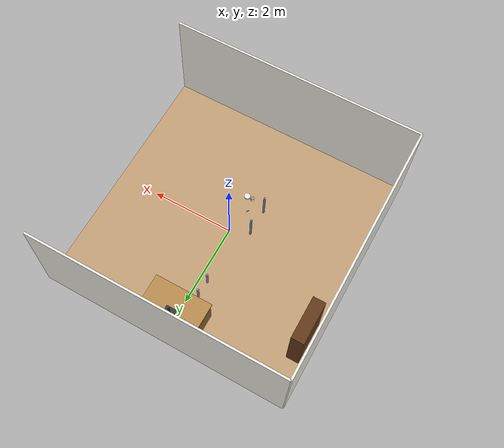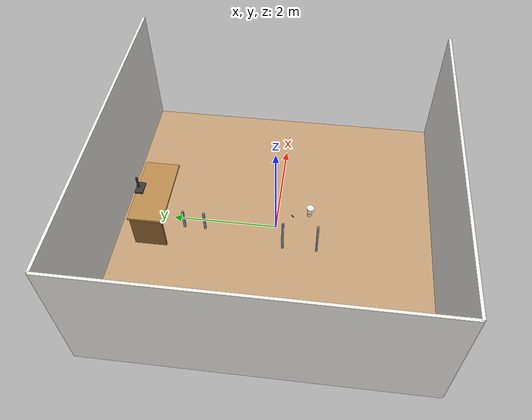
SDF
<sdf version="1.10">
 <world name="bps_room">
  <model name="floor">
   <static>true</static>
   <link name="link">
    <collision name="collision"><geometry><box><size>6 6 0.02</size></box></geometry></collision>
    <visual name="visual">
     <geometry><box><size>6 6 0.02</size></box></geometry>
     <material>
      <ambient>0.75999999 0.620000005 0.460000008 1</ambient>
      <diffuse>0.75999999 0.620000005 0.460000008 1</diffuse>
     </material>
    </visual>
    <inertial>
     <mass>1</mass>
     <inertia><ixx>1</ixx><ixy>0</ixy><ixz>0</ixz><iyy>1</iyy><iyz>0</iyz><izz>1</izz></inertia>
    </inertial>
   </link>
  </model>
  <model name="wall_north">
   <static>true</static>
   <pose>0 3 1.25 0 0 0</pose>
   <link name="link">
    <collision name="collision">
     <geometry><box><size>6 0.050000000000000003 2.5</size></box></geometry>
    </collision>
    <visual name="visual">
     <geometry><box><size>6 0.050000000000000003 2.5</size></box></geometry>
     <material>
      <ambient>0.949999988 0.939999998 0.910000026 1</ambient>
      <diffuse>0.949999988 0.939999998 0.910000026 1</diffuse>
     </material>
    </visual>
    <inertial>
     <mass>1</mass>
     <inertia><ixx>1</ixx><ixy>0</ixy><ixz>0</ixz><iyy>1</iyy><iyz>0</iyz><izz>1</izz></inertia>
    </inertial>
   </link>
  </model>
  <model name="wall_south">
   <static>true</static>
   <pose>0 -3 1.25 0 0 0</pose>
   <link name="link">
    <collision name="collision">
     <geometry><box><size>6 0.050000000000000003 2.5</size></box></geometry>
    </collision>
    <visual name="visual">
     <geometry><box><size>6 0.050000000000000003 2.5</size></box></geometry>
     <material>
      <ambient>0.949999988 0.939999998 0.910000026 1</ambient>
      <diffuse>0.949999988 0.939999998 0.910000026 1</diffuse>
     </material>
    </visual>
    <inertial>
     <mass>1</mass>
     <inertia><ixx>1</ixx><ixy>0</ixy><ixz>0</ixz><iyy>1</iyy><iyz>0</iyz><izz>1</izz></inertia>
    </inertial>
   </link>
  </model>
  <model name="wall_west">
   <static>true</static>
   <pose>-3 0 1.25 0 0 0</pose>
   <link name="link">
    <collision name="collision">
     <geometry><box><size>0.050000000000000003 6 2.5</size></box></geometry>
    </collision>
    <visual name="visual">
     <geometry><box><size>0.050000000000000003 6 2.5</size></box></geometry>
     <material>
      <ambient>0.930000007 0.920000017 0.889999986 1</ambient>
      <diffuse>0.930000007 0.920000017 0.889999986 1</diffuse>
     </material>
    </visual>
    <inertial>
     <mass>1</mass>
     <inertia><ixx>1</ixx><ixy>0</ixy><ixz>0</ixz><iyy>1</iyy><iyz>0</iyz><izz>1</izz></inertia>
    </inertial>
   </link>
  </model>
  <model name="bookshelf_body">
   <static>true</static>
   <pose>-2.7000000000000002 1.5 0.75 0 0 0</pose>
   <link name="link">
    <collision name="collision"><geometry><box><size>0.29999999999999999 1 1.5</size></box></geometry></collision>
    <visual name="visual">
     <geometry><box><size>0.29999999999999999 1 1.5</size></box></geometry>
     <material>
      <ambient>0.379999995 0.219999999 0.0900000036 1</ambient>
      <diffuse>0.379999995 0.219999999 0.0900000036 1</diffuse>
     </material>
    </visual>
    <inertial>
     <mass>1</mass>
     <inertia><ixx>1</ixx><ixy>0</ixy><ixz>0</ixz><iyy>1</iyy><iyz>0</iyz><izz>1</izz></inertia>
    </inertial>
   </link>
  </model>
  <model name="shelf_1">
   <static>true</static>
   <pose>-2.7000000000000002 1.5 0.40000000000000002 0 0 0</pose>
   <link name="link">
    <collision name="collision">
     <geometry><box><size>0.28000000000000003 0.94999999999999996 0.02</size></box></geometry>
    </collision>
    <visual name="visual">
     <geometry><box><size>0.28000000000000003 0.94999999999999996 0.02</size></box></geometry>
     <material>
      <ambient>0.5 0.319999993 0.140000001 1</ambient>
      <diffuse>0.5 0.319999993 0.140000001 1</diffuse>
     </material>
    </visual>
    <inertial>
     <mass>1</mass>
     <inertia><ixx>1</ixx><ixy>0</ixy><ixz>0</ixz><iyy>1</iyy><iyz>0</iyz><izz>1</izz></inertia>
    </inertial>
   </link>
  </model>
  <model name="shelf_2">
   <static>true</static>
   <pose>-2.7000000000000002 1.5 0.84999999999999998 0 0 0</pose>
   <link name="link">
    <collision name="collision">
     <geometry><box><size>0.28000000000000003 0.94999999999999996 0.02</size></box></geometry>
    </collision>
    <visual name="visual">
     <geometry><box><size>0.28000000000000003 0.94999999999999996 0.02</size></box></geometry>
     <material>
      <ambient>0.5 0.319999993 0.140000001 1</ambient>
      <diffuse>0.5 0.319999993 0.140000001 1</diffuse>
     </material>
    </visual>
    <inertial>
     <mass>1</mass>
     <inertia><ixx>1</ixx><ixy>0</ixy><ixz>0</ixz><iyy>1</iyy><iyz>0</iyz><izz>1</izz></inertia>
    </inertial>
   </link>
  </model>
  <model name="shelf_3">
   <static>true</static>
   <pose>-2.7000000000000002 1.5 1.25 0 0 0</pose>
   <link name="link">
    <collision name="collision">
     <geometry><box><size>0.28000000000000003 0.94999999999999996 0.02</size></box></geometry>
    </collision>
    <visual name="visual">
     <geometry><box><size>0.28000000000000003 0.94999999999999996 0.02</size></box></geometry>
     <material>
      <ambient>0.5 0.319999993 0.140000001 1</ambient>
      <diffuse>0.5 0.319999993 0.140000001 1</diffuse>
     </material>
    </visual>
    <inertial>
     <mass>1</mass>
     <inertia><ixx>1</ixx><ixy>0</ixy><ixz>0</ixz><iyy>1</iyy><iyz>0</iyz><izz>1</izz></inertia>
    </inertial>
   </link>
  </model>
  <model name="books_row1">
   <static>true</static>
   <pose>-2.6200000000000001 1.5 0.62 0 0 0</pose>
   <link name="link">
    <visual name="visual">
     <geometry><box><size>0.040000000000000001 0.80000000000000004 0.20000000000000001</size></box></geometry>
     <material>
      <ambient>0.779999971 0.180000007 0.180000007 1</ambient>
      <diffuse>0.779999971 0.180000007 0.180000007 1</diffuse>
     </material>
    </visual>
    <inertial>
     <mass>1</mass>
     <inertia><ixx>1</ixx><ixy>0</ixy><ixz>0</ixz><iyy>1</iyy><iyz>0</iyz><izz>1</izz></inertia>
    </inertial>
   </link>
  </model>
  <model name="books_row2">
   <static>true</static>
   <pose>-2.6200000000000001 1.5 1.0600000000000001 0 0 0</pose>
   <link name="link">
    <visual name="visual">
     <geometry><box><size>0.040000000000000001 0.69999999999999996 0.17999999999999999</size></box></geometry>
     <material>
      <ambient>0.180000007 0.319999993 0.720000029 1</ambient>
      <diffuse>0.180000007 0.319999993 0.720000029 1</diffuse>
     </material>
    </visual>
    <inertial>
     <mass>1</mass>
     <inertia><ixx>1</ixx><ixy>0</ixy><ixz>0</ixz><iyy>1</iyy><iyz>0</iyz><izz>1</izz></inertia>
    </inertial>
   </link>
  </model>
  <model name="desk">
   <static>true</static>
   <pose>0 2.2999999999999998 0.75 0 0 0</pose>
   <link name="link">
    <collision name="collision">
     <geometry><box><size>1.3999999999999999 0.65000000000000002 0.050000000000000003</size></box></geometry>
    </collision>
    <visual name="visual">
     <geometry><box><size>1.3999999999999999 0.65000000000000002 0.050000000000000003</size></box></geometry>
     <material>
      <ambient>0.720000029 0.540000021 0.300000012 1</ambient>
      <diffuse>0.720000029 0.540000021 0.300000012 1</diffuse>
     </material>
    </visual>
    <inertial>
     <mass>1</mass>
     <inertia><ixx>1</ixx><ixy>0</ixy><ixz>0</ixz><iyy>1</iyy><iyz>0</iyz><izz>1</izz></inertia>
    </inertial>
   </link>
  </model>
  <model name="desk_leg_left">
   <static>true</static>
   <pose>-0.65000000000000002 2.2999999999999998 0.375 0 0 0</pose>
   <link name="link">
    <collision name="collision">
     <geometry><box><size>0.050000000000000003 0.59999999999999998 0.75</size></box></geometry>
    </collision>
    <visual name="visual">
     <geometry><box><size>0.050000000000000003 0.59999999999999998 0.75</size></box></geometry>
     <material>
      <ambient>0.550000012 0.379999995 0.180000007 1</ambient>
      <diffuse>0.550000012 0.379999995 0.180000007 1</diffuse>
     </material>
    </visual>
    <inertial>
     <mass>1</mass>
     <inertia><ixx>1</ixx><ixy>0</ixy><ixz>0</ixz><iyy>1</iyy><iyz>0</iyz><izz>1</izz></inertia>
    </inertial>
   </link>
  </model>
  <model name="monitor_base">
   <static>true</static>
   <pose>0 2.5499999999999998 0.81999999999999995 0 0 0</pose>
   <link name="link">
    <collision name="collision">
     <geometry><box><size>0.25 0.14999999999999999 0.040000000000000001</size></box></geometry>
    </collision>
    <visual name="visual">
     <geometry><box><size>0.25 0.14999999999999999 0.040000000000000001</size></box></geometry>
     <material>
      <ambient>0.219999999 0.219999999 0.219999999 1</ambient>
      <diffuse>0.219999999 0.219999999 0.219999999 1</diffuse>
     </material>
    </visual>
    <inertial>
     <mass>1</mass>
     <inertia><ixx>1</ixx><ixy>0</ixy><ixz>0</ixz><iyy>1</iyy><iyz>0</iyz><izz>1</izz></inertia>
    </inertial>
   </link>
  </model>
  <model name="monitor_stand">
   <static>true</static>
   <pose>0 2.5800000000000001 0.96999999999999997 0 0 0</pose>
   <link name="link">
    <collision name="collision">
     <geometry><box><size>0.029999999999999999 0.029999999999999999 0.26000000000000001</size></box></geometry>
    </collision>
    <visual name="visual">
     <geometry><box><size>0.029999999999999999 0.029999999999999999 0.26000000000000001</size></box></geometry>
     <material>
      <ambient>0.219999999 0.219999999 0.219999999 1</ambient>
      <diffuse>0.219999999 0.219999999 0.219999999 1</diffuse>
     </material>
    </visual>
    <inertial>
     <mass>1</mass>
     <inertia><ixx>1</ixx><ixy>0</ixy><ixz>0</ixz><iyy>1</iyy><iyz>0</iyz><izz>1</izz></inertia>
    </inertial>
   </link>
  </model>
  <model name="chair_leg_fl">
   <static>true</static>
   <pose>-0.20000000000000001 1.3500000000000001 0.23999999999999999 0 0 0</pose>
   <link name="link">
    <collision name="collision">
     <geometry><box><size>0.040000000000000001 0.040000000000000001 0.47999999999999998</size></box></geometry>
    </collision>
    <visual name="visual">
     <geometry><box><size>0.040000000000000001 0.040000000000000001 0.47999999999999998</size></box></geometry>
     <material>
      <ambient>0.600000024 0.600000024 0.620000005 1</ambient>
      <diffuse>0.600000024 0.600000024 0.620000005 1</diffuse>
     </material>
    </visual>
    <inertial>
     <mass>1</mass>
     <inertia><ixx>1</ixx><ixy>0</ixy><ixz>0</ixz><iyy>1</iyy><iyz>0</iyz><izz>1</izz></inertia>
    </inertial>
   </link>
  </model>
  <model name="chair_leg_bl">
   <static>true</static>
   <pose>-0.20000000000000001 1.75 0.23999999999999999 0 0 0</pose>
   <link name="link">
    <collision name="collision">
     <geometry><box><size>0.040000000000000001 0.040000000000000001 0.47999999999999998</size></box></geometry>
    </collision>
    <visual name="visual">
     <geometry><box><size>0.040000000000000001 0.040000000000000001 0.47999999999999998</size></box></geometry>
     <material>
      <ambient>0.600000024 0.600000024 0.620000005 1</ambient>
      <diffuse>0.600000024 0.600000024 0.620000005 1</diffuse>
     </material>
    </visual>
    <inertial>
     <mass>1</mass>
     <inertia><ixx>1</ixx><ixy>0</ixy><ixz>0</ixz><iyy>1</iyy><iyz>0</iyz><izz>1</izz></inertia>
    </inertial>
   </link>
  </model>
  <model name="table_leg_fl">
   <static>true</static>
   <pose>-0.46999999999999997 -0.81999999999999995 0.375 0 0 0</pose>
   <link name="link">
    <collision name="collision">
     <geometry><box><size>0.040000000000000001 0.040000000000000001 0.75</size></box></geometry>
    </collision>
    <visual name="visual">
     <geometry><box><size>0.040000000000000001 0.040000000000000001 0.75</size></box></geometry>
     <material>
      <ambient>0.5 0.519999981 0.540000021 1</ambient>
      <diffuse>0.5 0.519999981 0.540000021 1</diffuse>
     </material>
    </visual>
    <inertial>
     <mass>1</mass>
     <inertia><ixx>1</ixx><ixy>0</ixy><ixz>0</ixz><iyy>1</iyy><iyz>0</iyz><izz>1</izz></inertia>
    </inertial>
   </link>
  </model>
  <model name="table_leg_bl">
   <static>true</static>
   <pose>-0.46999999999999997 -0.17999999999999999 0.375 0 0 0</pose>
   <link name="link">
    <collision name="collision">
     <geometry><box><size>0.040000000000000001 0.040000000000000001 0.75</size></box></geometry>
    </collision>
    <visual name="visual">
     <geometry><box><size>0.040000000000000001 0.040000000000000001 0.75</size></box></geometry>
     <material>
      <ambient>0.5 0.519999981 0.540000021 1</ambient>
      <diffuse>0.5 0.519999981 0.540000021 1</diffuse>
     </material>
    </visual>
    <inertial>
     <mass>1</mass>
     <inertia><ixx>1</ixx><ixy>0</ixy><ixz>0</ixz><iyy>1</iyy><iyz>0</iyz><izz>1</izz></inertia>
    </inertial>
   </link>
  </model>
  <model name="mug">
   <static>true</static>
   <pose>-0.24497741460800171 -0.63916623592376709 0.76999998092651367 0 0 0.29999998999971872</pose>
   <link name="link">
    <visual name="body">
     <pose>0 0 0.042500000000000003 0 0 0</pose>
     <geometry>
      <cylinder><radius>0.037999999999999999</radius><length>0.085000000000000006</length></cylinder>
     </geometry>
     <material>
      <ambient>0.939999998 0.920000017 0.879999995 1</ambient>
      <diffuse>0.939999998 0.920000017 0.879999995 1</diffuse>
      <specular>0.300000012 0.300000012 0.280000001 1</specular>
     </material>
     <plugin name="gz::sim::systems::Label" filename="gz-sim-label-system"><label>1</label></plugin>
    </visual>
    <visual name="rim">
     <pose>0 0 0.088499999999999995 0 0 0</pose>
     <geometry><cylinder><radius>0.039</radius><length>0.0050000000000000001</length></cylinder></geometry>
     <material>
      <ambient>0.720000029 0.579999983 0.439999998 1</ambient>
      <diffuse>0.720000029 0.579999983 0.439999998 1</diffuse>
     </material>
     <plugin name="gz::sim::systems::Label" filename="gz-sim-label-system"><label>1</label></plugin>
    </visual>
    <visual name="handle_outer">
     <pose>0.050000000000000003 0 0.042500000000000003 0 0 0</pose>
     <geometry><box><size>0.021999999999999999 0.01 0.042000000000000003</size></box></geometry>
     <material>
      <ambient>0.939999998 0.920000017 0.879999995 1</ambient>
      <diffuse>0.939999998 0.920000017 0.879999995 1</diffuse>
     </material>
     <plugin name="gz::sim::systems::Label" filename="gz-sim-label-system"><label>1</label></plugin>
    </visual>
    <visual name="handle_top">
     <pose>0.041000000000000002 0 0.063500000000000001 0 0 0</pose>
     <geometry><box><size>0.0060000000000000001 0.01 0.01</size></box></geometry>
     <material>
      <ambient>0.939999998 0.920000017 0.879999995 1</ambient>
      <diffuse>0.939999998 0.920000017 0.879999995 1</diffuse>
     </material>
     <plugin name="gz::sim::systems::Label" filename="gz-sim-label-system"><label>1</label></plugin>
    </visual>
    <visual name="handle_bot">
     <pose>0.041000000000000002 0 0.021499999999999998 0 0 0</pose>
     <geometry><box><size>0.0060000000000000001 0.01 0.01</size></box></geometry>
     <material>
      <ambient>0.939999998 0.920000017 0.879999995 1</ambient>
      <diffuse>0.939999998 0.920000017 0.879999995 1</diffuse>
     </material>
     <plugin name="gz::sim::systems::Label" filename="gz-sim-label-system"><label>1</label></plugin>
    </visual>
    <inertial>
     <mass>1</mass>
     <inertia><ixx>1</ixx><ixy>0</ixy><ixz>0</ixz><iyy>1</iyy><iyz>0</iyz><izz>1</izz></inertia>
    </inertial>
   </link>
  </model>
  <model name="usb_drive">
   <static>true</static>
   <pose>-0.2956385612487793 -0.34313863515853882 0.76999998092651367 0 0 0.89999995233500307</pose>
   <link name="link">
    <visual name="body">
     <pose>0 0 0.0040000000000000001 0 0 0</pose>
     <geometry><box><size>0.058000000000000003 0.017999999999999999 0.0080000000000000002</size></box></geometry>
     <material>
      <ambient>0.140000001 0.319999993 0.800000012 1</ambient>
      <diffuse>0.140000001 0.319999993 0.800000012 1</diffuse>
      <specular>0.200000003 0.349999994 0.850000024 1</specular>
     </material>
     <plugin name="gz::sim::systems::Label" filename="gz-sim-label-system"><label>5</label></plugin>
    </visual>
    <visual name="connector">
     <pose>0.035000000000000003 0 0.0040000000000000001 0 0 0</pose>
     <geometry><box><size>0.014999999999999999 0.012999999999999999 0.0060000000000000001</size></box></geometry>
     <material>
      <ambient>0.720000029 0.720000029 0.74000001 1</ambient>
      <diffuse>0.720000029 0.720000029 0.74000001 1</diffuse>
      <specular>0.800000012 0.800000012 0.819999993 1</specular>
     </material>
     <plugin name="gz::sim::systems::Label" filename="gz-sim-label-system"><label>5</label></plugin>
    </visual>
    <visual name="led">
     <pose>-0.014999999999999999 0 0.0089999999999999993 0 0 0</pose>
     <geometry><box><size>0.0050000000000000001 0.0040000000000000001 0.001</size></box></geometry>
     <material>
      <ambient>0.200000003 0.899999976 0.300000012 1</ambient>
      <diffuse>0.200000003 0.899999976 0.300000012 1</diffuse>
      <emissive>0.0500000007 0.300000012 0.0799999982 1</emissive>
     </material>
     <plugin name="gz::sim::systems::Label" filename="gz-sim-label-system"><label>5</label></plugin>
    </visual>
    <inertial>
     <mass>1</mass>
     <inertia><ixx>1</ixx><ixy>0</ixy><ixz>0</ixz><iyy>1</iyy><iyz>0</iyz><izz>1</izz></inertia>
    </inertial>
   </link>
  </model>
  <model name="bowl">
   <static>true</static>
   <pose>-0.11032228916883469 -0.64999997615814209 0.76999998092651367 0 0 0</pose>
   <link name="link">
    <visual name="body">
     <pose>0 0 0.024 0 0 0</pose>
     <geometry>
      <cylinder><radius>0.066000000000000003</radius><length>0.048000000000000001</length></cylinder>
     </geometry>
     <material>
      <ambient>0.959999979 0.959999979 0.959999979 1</ambient>
      <diffuse>0.959999979 0.959999979 0.959999979 1</diffuse>
      <specular>0.5 0.5 0.5 1</specular>
     </material>
     <plugin name="gz::sim::systems::Label" filename="gz-sim-label-system"><label>6</label></plugin>
    </visual>
    <visual name="rim">
     <pose>0 0 0.051999999999999998 0 0 0</pose>
     <geometry>
      <cylinder><radius>0.071999999999999995</radius><length>0.0060000000000000001</length></cylinder>
     </geometry>
     <material>
      <ambient>0.920000017 0.920000017 0.920000017 1</ambient>
      <diffuse>0.920000017 0.920000017 0.920000017 1</diffuse>
      <specular>0.550000012 0.550000012 0.550000012 1</specular>
     </material>
     <plugin name="gz::sim::systems::Label" filename="gz-sim-label-system"><label>6</label></plugin>
    </visual>
    <visual name="foot">
     <pose>0 0 0.0030000000000000001 0 0 0</pose>
     <geometry>
      <cylinder><radius>0.032000000000000001</radius><length>0.0060000000000000001</length></cylinder>
     </geometry>
     <material>
      <ambient>0.879999995 0.879999995 0.879999995 1</ambient>
      <diffuse>0.879999995 0.879999995 0.879999995 1</diffuse>
     </material>
     <plugin name="gz::sim::systems::Label" filename="gz-sim-label-system"><label>6</label></plugin>
    </visual>
    <inertial>
     <mass>1</mass>
     <inertia><ixx>1</ixx><ixy>0</ixy><ixz>0</ixz><iyy>1</iyy><iyz>0</iyz><izz>1</izz></inertia>
    </inertial>
   </link>
  </model>
 </world>
</sdf>
